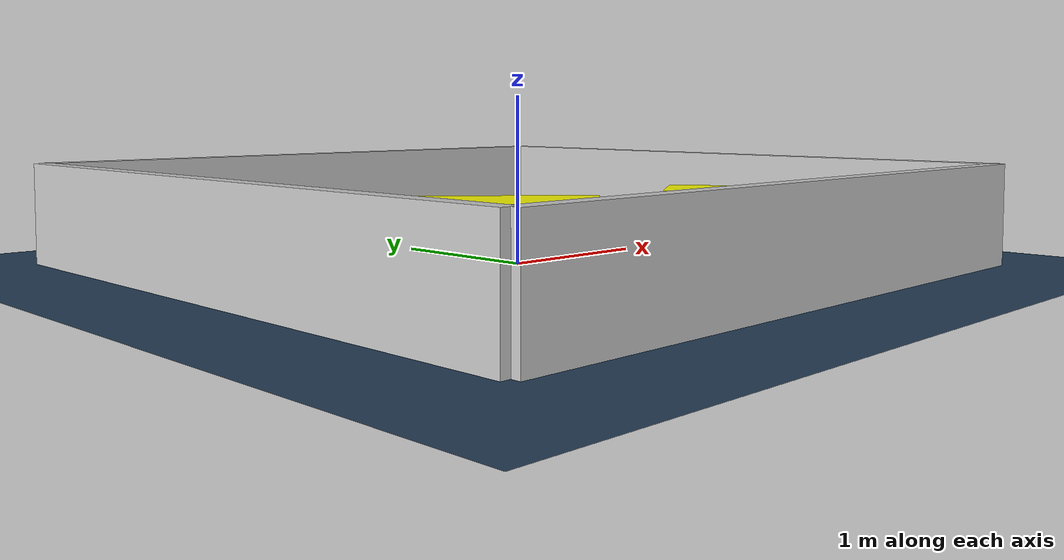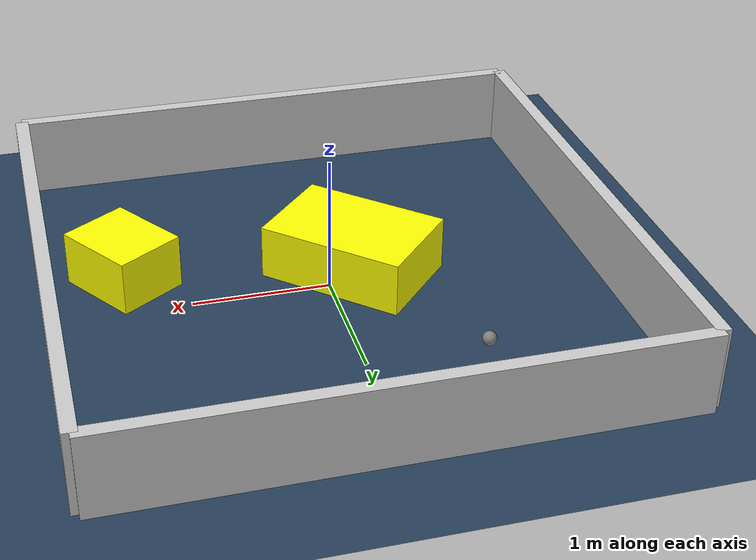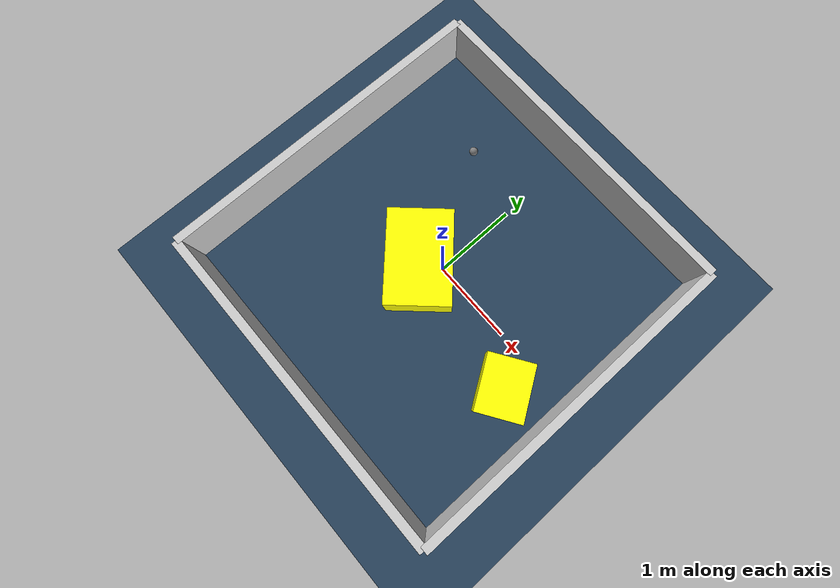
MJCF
<?xml version="1.0" ?>
<mujoco model="generated_environment">
  <option timestep="0.01" integrator="RK4" cone="elliptic"/>
  <default>
    <geom density="1"/>
  </default>
  <asset>
    <texture builtin="gradient" height="3072" rgb1="0.3 0.5 0.7" rgb2="0 0 0" type="skybox" width="512"/>
    <texture builtin="checker" height="300" mark="edge" markrgb="0.8 0.8 0.8" name="groundplane" rgb1="0.2 0.3 0.4" rgb2="0.1 0.2 0.3" type="2d" width="300"/>
    <material name="groundplane" reflectance="0.2" texrepeat="5 5" texture="groundplane" texuniform="true"/>
    <material name="robot" rgba="0.0 1.0 0.0 1"/>
  </asset>
  <worldbody>
    <light dir="0 0 -1" directional="true" pos="0 0 1.5"/>
    <geom condim="4" friction="1.0 0.005 0.001" material="groundplane" name="floor" size="0 0 0.05" type="plane"/>
    <body name="walls">
      <geom name="wall_1" condim="4" pos="-2.0 0.0 0.3" rgba="0.800000011920929 0.800000011920929 0.800000011920929 1.0" size="0.05 2.0 0.3" type="box"/>
      <geom name="wall_2" condim="4" pos="2.0 0.0 0.3" rgba="0.800000011920929 0.800000011920929 0.800000011920929 1.0" size="0.05 2.0 0.3" type="box"/>
      <geom name="wall_3" condim="4" pos="0.0 -2.0 0.3" rgba="0.800000011920929 0.800000011920929 0.800000011920929 1.0" size="2.0 0.05 0.3" type="box"/>
      <geom name="wall_4" condim="4" pos="0.0 2.0 0.3" rgba="0.800000011920929 0.800000011920929 0.800000011920929 1.0" size="2.0 0.05 0.3" type="box"/>
    </body>
    <body name="robot">
      <joint name="joint_x" type="slide" pos="0 0 0" axis="1 0 0"/>
      <joint name="joint_y" type="slide" pos="0 0 0" axis="0 1 0"/>
      <geom name="robot" type="sphere" pos="-0.78803300358766 1.1846936316246754 0.2" size="0.05" mass="5." friction="1.0 0.005 0.0001" condim="4"/>
      <site name="sensor_ball"/>
    </body>
    <body name="obstacle_1_movable">
      <geom name="obstacle_1_movable" condim="4" pos="-0.214989555949348 -0.1527628318122829 0.2" euler="0 0 136.94811628178078" friction="1.0 0.005 0.001" rgba="1 1 0 1" size="0.5477440544860513 0.374188501264329 0.2" type="box" mass="0.1"/>
      <joint type="free"/>
    </body>
    <body name="obstacle_2_movable">
      <geom name="obstacle_2_movable" condim="4" pos="1.4292321082396788 -0.39923636120531936 0.2" euler="0 0 33.46210995185497" friction="1.0 0.005 0.001" rgba="1 1 0 1" size="0.26536782827908334 0.3171753736534164 0.2" type="box" mass="0.1"/>
      <joint type="free"/>
    </body>
  </worldbody>
  <actuator>
    <motor name="actuator_x" joint="joint_x" gear="1" ctrlrange="-1 1"/>
    <motor name="actuator_y" joint="joint_y" gear="1" ctrlrange="-1 1"/>
  </actuator>
</mujoco>
